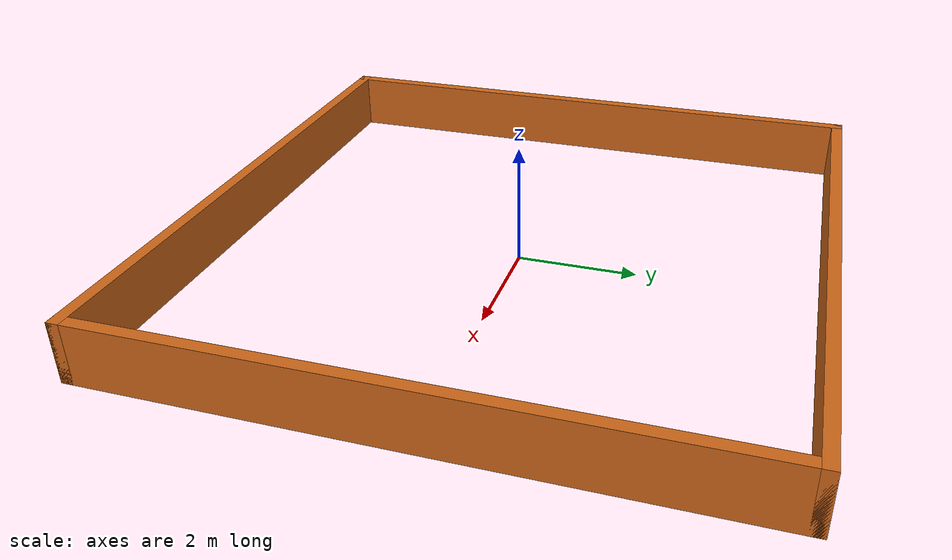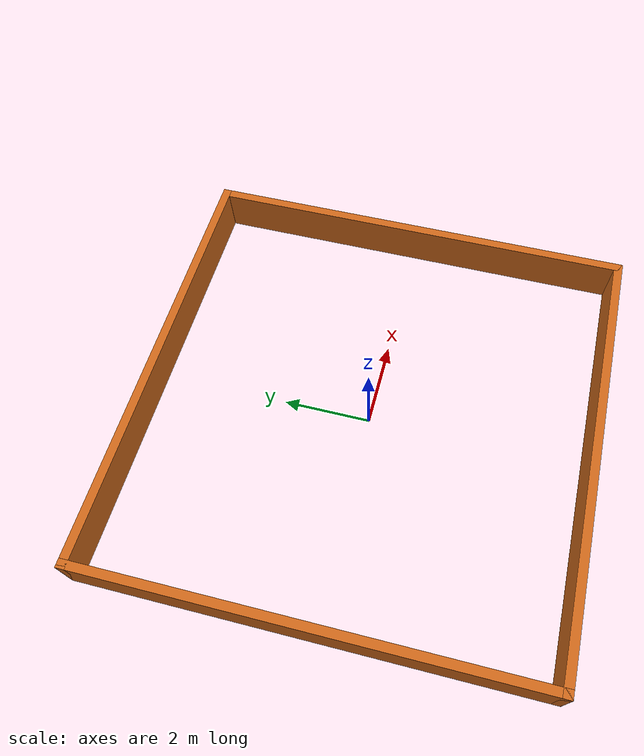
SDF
<?xml version="1.0" ?>
<sdf version="1.9">
  <model name="small_outer_walls">
    <static>true</static>
    <link name="link">
      <collision name="collision_north">
        <pose>0 5 0.5 0 0 0</pose>
        <geometry>
          <box>
            <size>10.2 0.2 1</size>
          </box>
        </geometry>
      </collision>
      <visual name="visual_north">
        <pose>0 5 0.5 0 0 0</pose>
        <geometry>
          <box>
            <size>10.2 0.2 1</size>
          </box>
        </geometry>
        <material>
          <ambient>0.8 0.4 0.1 1</ambient>
          <diffuse>0.8 0.4 0.1 1</diffuse>
        </material>
      </visual>

      <collision name="collision_south">
        <pose>0 -5 0.5 0 0 0</pose>
        <geometry>
          <box>
            <size>10.2 0.2 1</size>
          </box>
        </geometry>
      </collision>
      <visual name="visual_south">
        <pose>0 -5 0.5 0 0 0</pose>
        <geometry>
          <box>
            <size>10.2 0.2 1</size>
          </box>
        </geometry>
        <material>
          <ambient>0.8 0.4 0.1 1</ambient>
          <diffuse>0.8 0.4 0.1 1</diffuse>
        </material>
      </visual>

      <collision name="collision_east">
        <pose>5 0 0.5 0 0 0</pose>
        <geometry>
          <box>
            <size>0.2 10.2 1</size>
          </box>
        </geometry>
      </collision>
      <visual name="visual_east">
        <pose>5 0 0.5 0 0 0</pose>
        <geometry>
          <box>
            <size>0.2 10.2 1</size>
          </box>
        </geometry>
        <material>
          <ambient>0.8 0.4 0.1 1</ambient>
          <diffuse>0.8 0.4 0.1 1</diffuse>
        </material>
      </visual>

      <collision name="collision_west">
        <pose>-5 0 0.5 0 0 0</pose>
        <geometry>
          <box>
            <size>0.2 10.2 1</size>
          </box>
        </geometry>
      </collision>
      <visual name="visual_west">
        <pose>-5 0 0.5 0 0 0</pose>
        <geometry>
          <box>
            <size>0.2 10.2 1</size>
          </box>
        </geometry>
        <material>
          <ambient>0.8 0.4 0.1 1</ambient>
          <diffuse>0.8 0.4 0.1 1</diffuse>
        </material>
      </visual>
    </link>
  </model>
</sdf>
